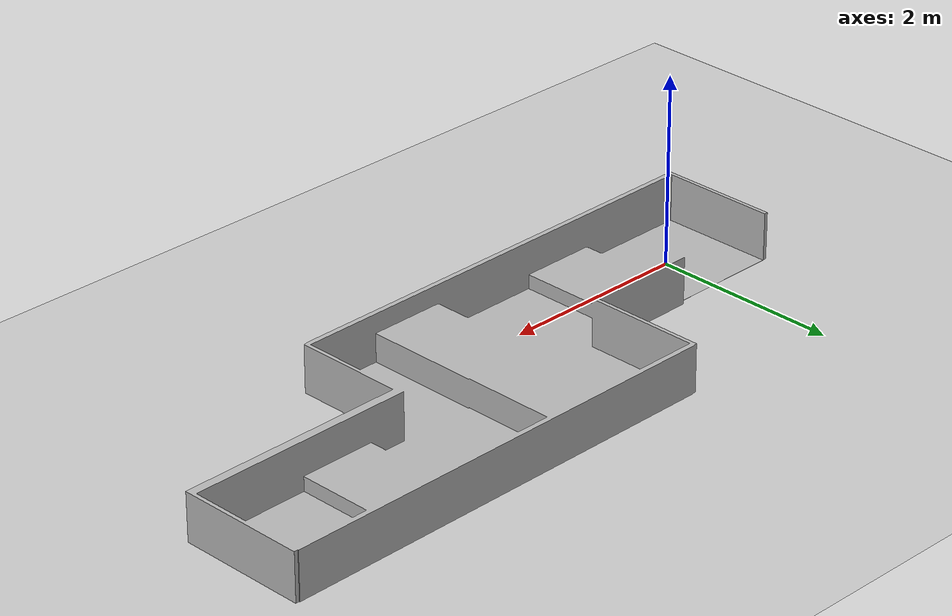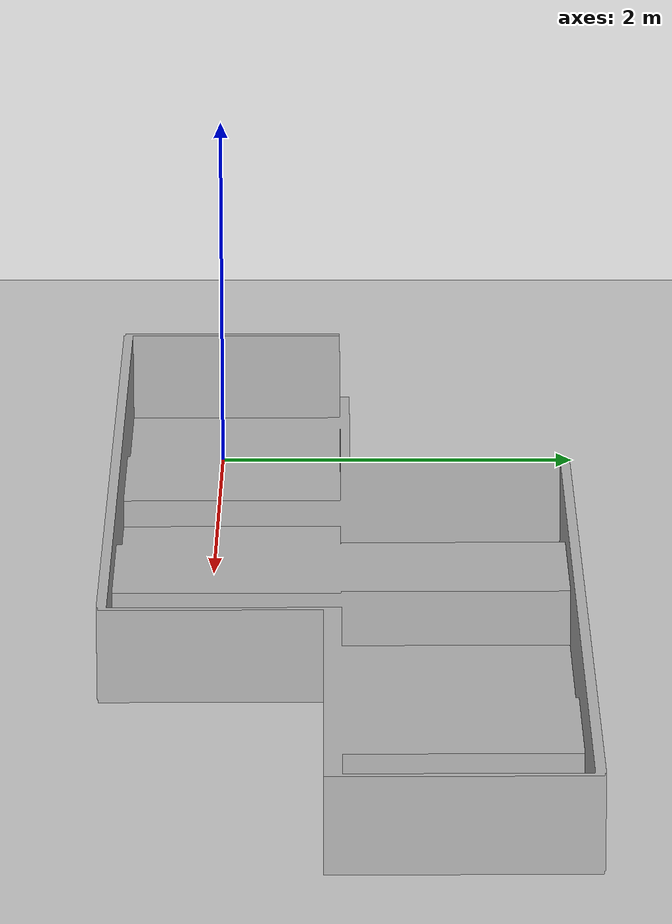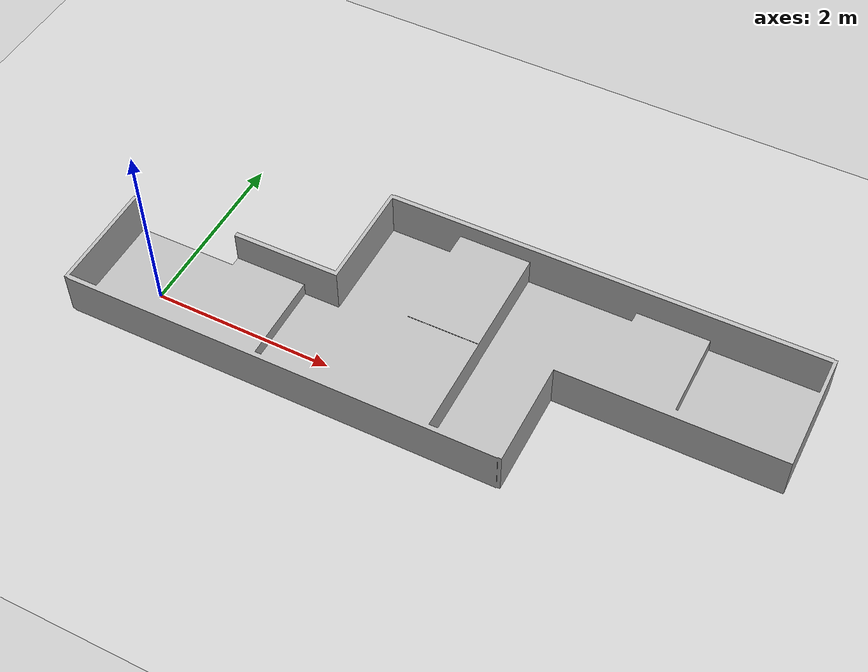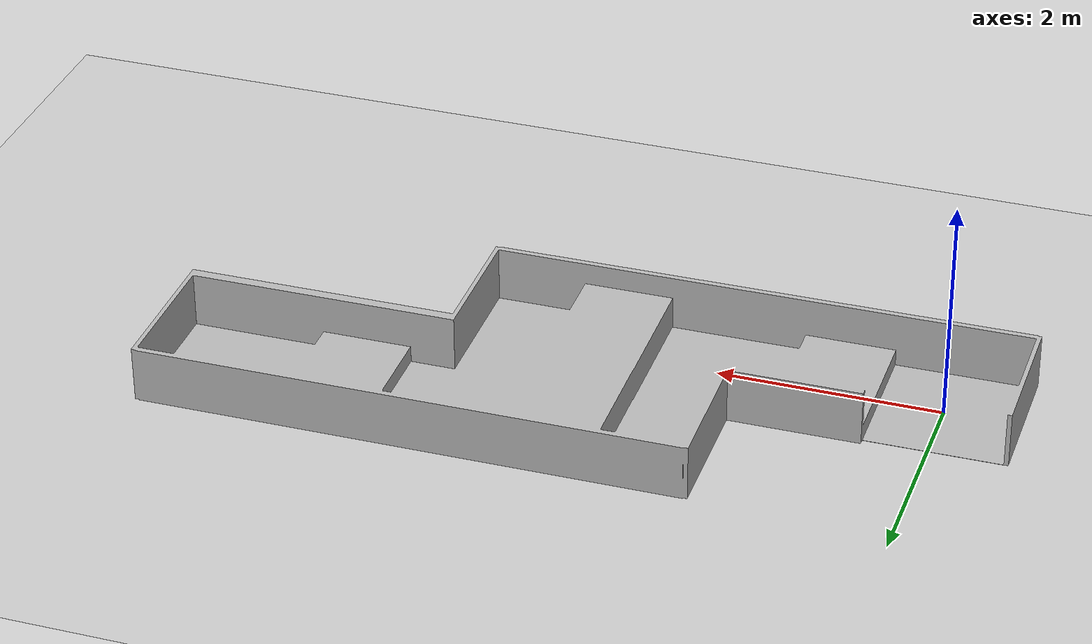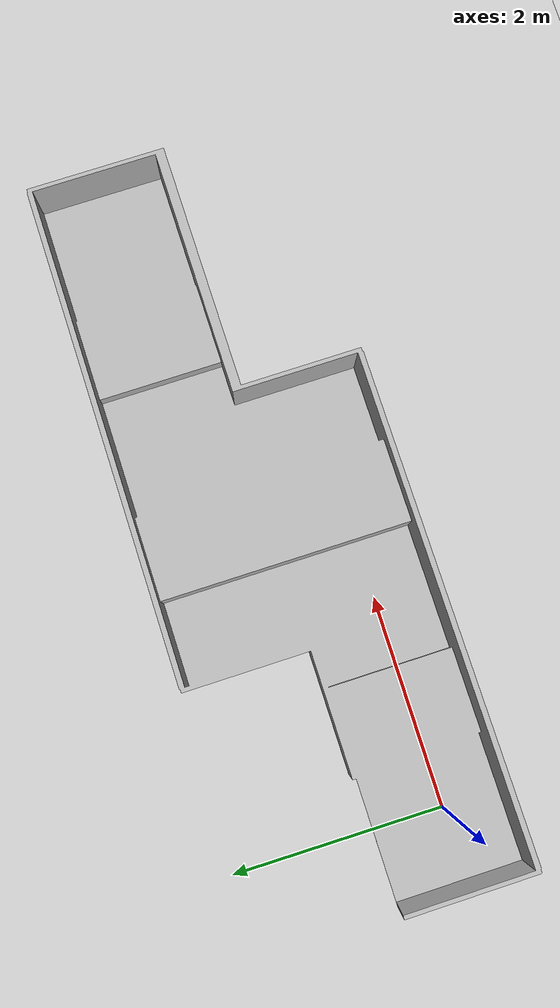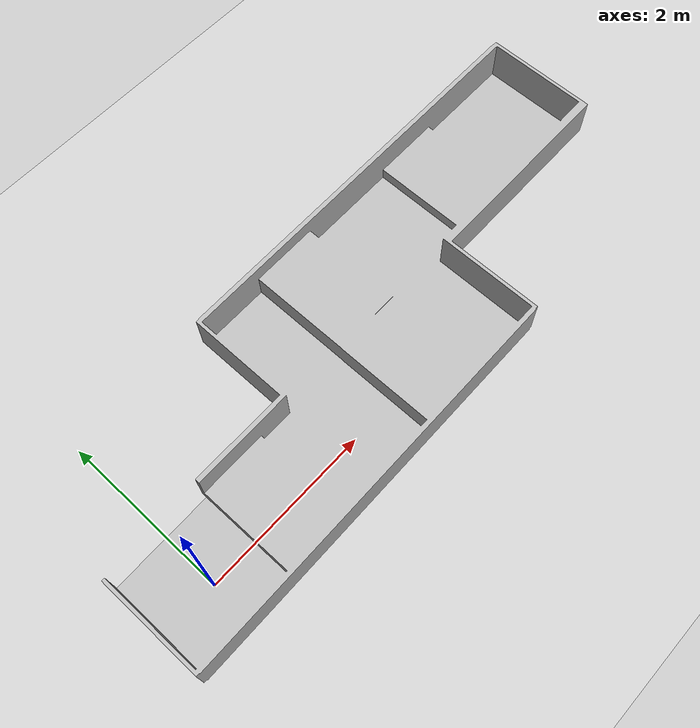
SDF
<sdf version="1.7">
 <world name="sample">
  <model name="ground_plane">
   <static>1</static>
   <link name="link">
    <collision name="collision">
     <geometry><plane><normal>0 0 1</normal><size>100 100</size></plane></geometry>
     <surface>
      <contact><collide_bitmask>65535</collide_bitmask></contact>
      <friction><ode><mu>100</mu><mu2>50</mu2></ode></friction>
     </surface>
    </collision>
    <visual name="visual">
     <cast_shadows>0</cast_shadows>
     <geometry><plane><normal>0 0 1</normal><size>100 100</size></plane></geometry>
     <material>
      <script><uri>file://media/materials/scripts/gazebo.material</uri><name>Gazebo/Grey</name></script>
     </material>
    </visual>
   </link>
  </model>
  <model name="hurdles">
   <static>1</static>
   <pose>2.94365 0.686817 0.314664 1.5708 4e-06 -1.56228</pose>
   <link name="link">
    <collision name="collision">
     <geometry><mesh><scale>0.1 0.1 0.1</scale><uri>model://hurdles/hurdles.dae</uri></mesh></geometry>
     <surface><friction><ode><mu>100</mu><mu2>50</mu2></ode></friction></surface>
    </collision>
    <visual name="visual">
     <geometry><mesh><scale>0.1 0.1 0.1</scale><uri>model://hurdles/hurdles.dae</uri></mesh></geometry>
    </visual>
   </link>
  </model>
 </world>
</sdf>
